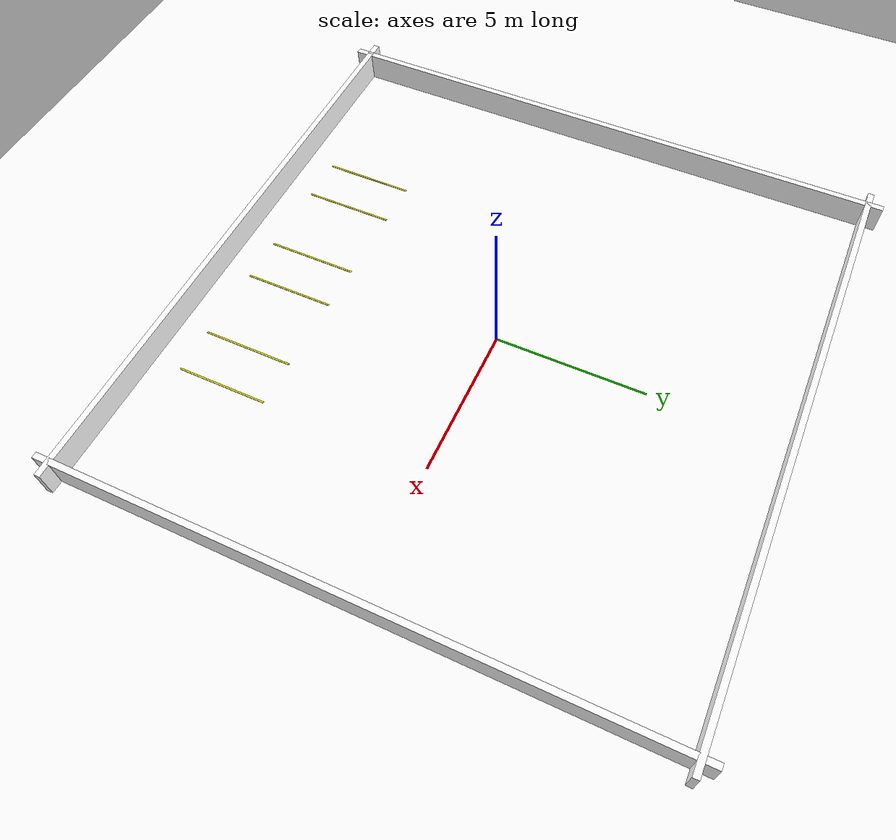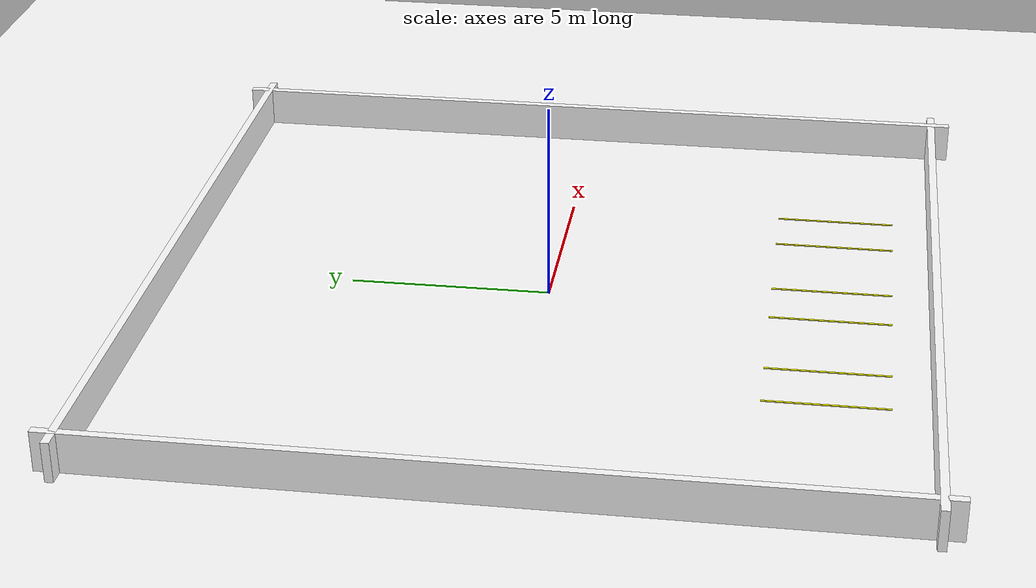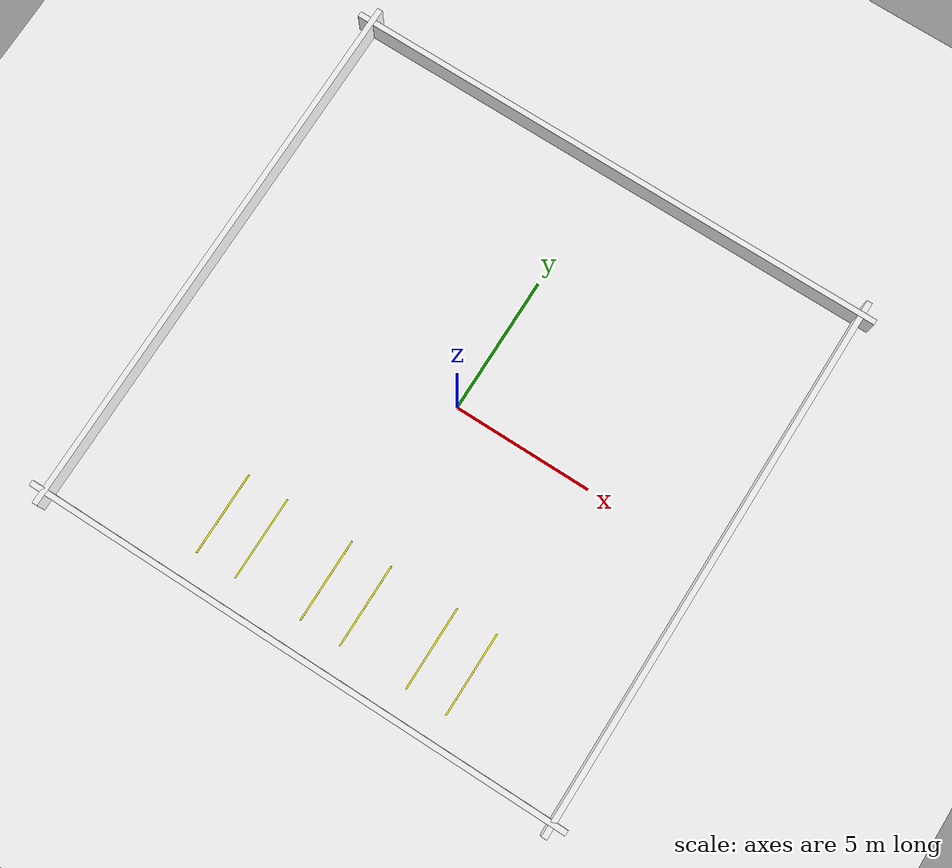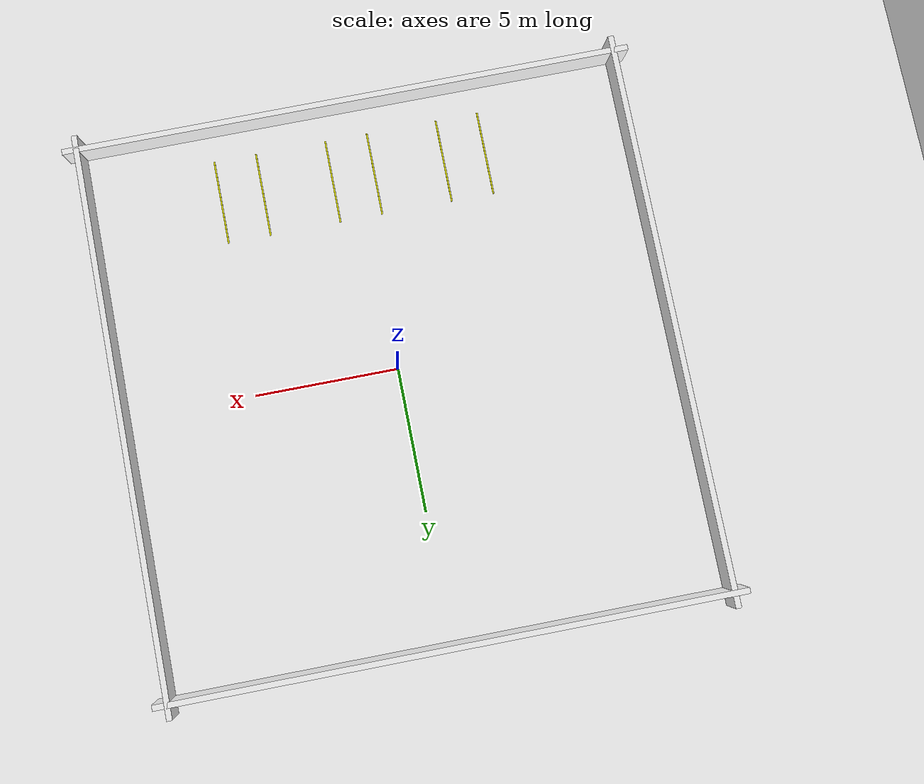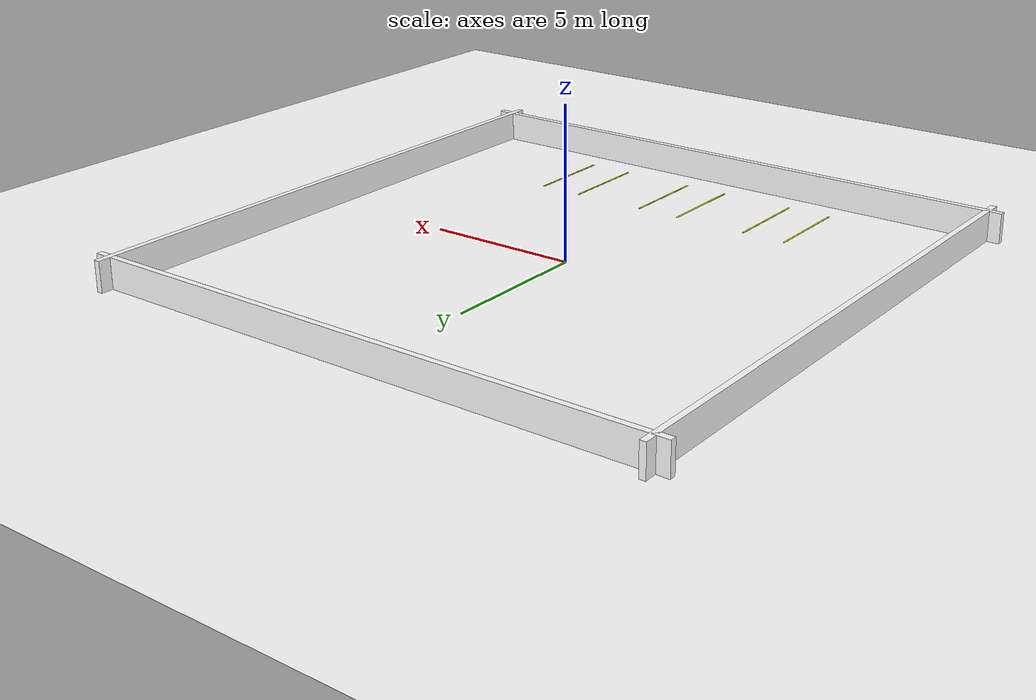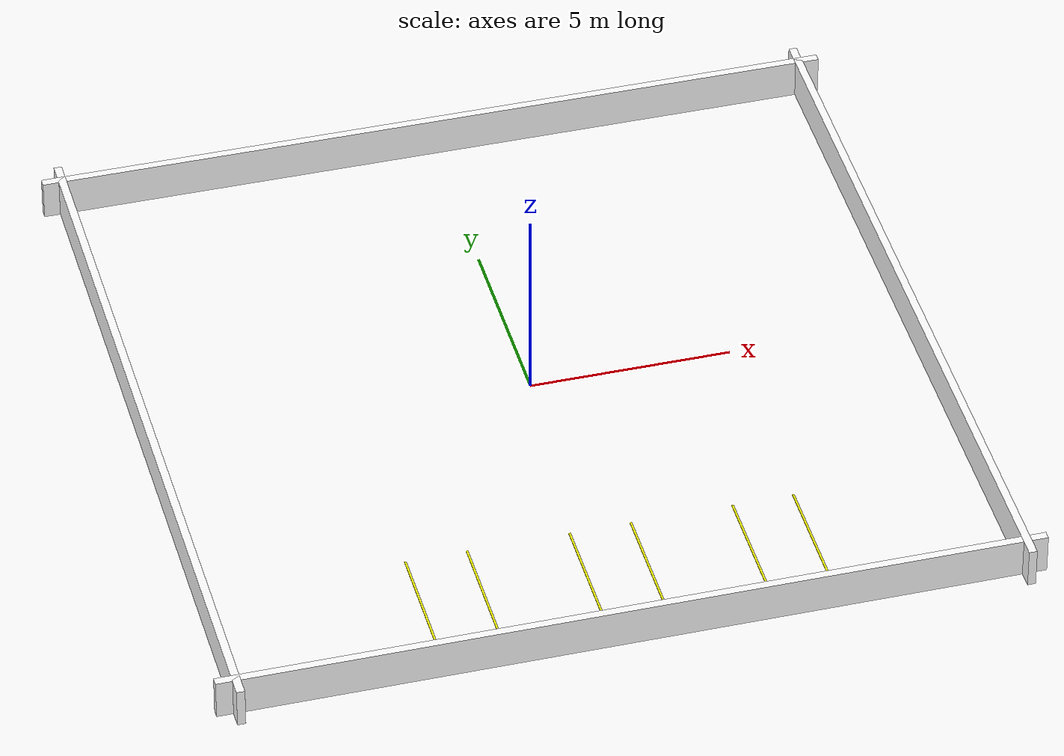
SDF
<?xml version="1.7"?>
<sdf version="1.10">
  <world name="parking_world_reverse">

    <light name="sun" type="directional">
      <pose>0 0 10 0 0 0</pose>
      <diffuse>1 1 1 1</diffuse>
      <specular>0.2 0.2 0.2 1</specular>
      <direction>-0.2 -0.3 -1</direction>
      <cast_shadows>false</cast_shadows>
    </light>

    <model name="ground">
      <static>true</static>
      <pose>0 0 0 0 0 0</pose>
      <link name="link">
        <collision name="collision">
          <geometry>
            <plane><normal>0 0 1</normal><size>20 20</size></plane>
          </geometry>
        </collision>
        <visual name="visual">
          <geometry>
            <plane><normal>0 0 1</normal><size>20 20</size></plane>
          </geometry>
          <material>
            <ambient>1 1 1 1</ambient>
            <diffuse>1 1 1 1</diffuse>
            <specular>0.1 0.1 0.1 1</specular>
          </material>
        </visual>
      </link>
    </model>

    <model name="wall_north">
      <static>true</static>
      <pose>0 9.5 0.5 0 0 0</pose>
      <link name="link">
        <collision name="collision">
          <geometry><box><size>20 0.2 1</size></box></geometry>
        </collision>
        <visual name="visual">
          <geometry><box><size>20 0.2 1</size></box></geometry>
          <material><ambient>1 1 1 1</ambient><diffuse>1 1 1 1</diffuse></material>
        </visual>
      </link>
    </model>

    <model name="wall_south">
      <static>true</static>
      <pose>0 -9.5 0.5 0 0 0</pose>
      <link name="link">
        <collision name="collision">
          <geometry><box><size>20 0.2 1</size></box></geometry>
        </collision>
        <visual name="visual">
          <geometry><box><size>20 0.2 1</size></box></geometry>
          <material><ambient>1 1 1 1</ambient><diffuse>1 1 1 1</diffuse></material>
        </visual>
      </link>
    </model>

    <model name="wall_west">
      <static>true</static>
      <pose>-9.5 0 0.5 0 0 0</pose>
      <link name="link">
        <collision name="collision">
          <geometry><box><size>0.2 20 1</size></box></geometry>
        </collision>
        <visual name="visual">
          <geometry><box><size>0.2 20 1</size></box></geometry>
          <material><ambient>1 1 1 1</ambient><diffuse>1 1 1 1</diffuse></material>
        </visual>
      </link>
    </model>

    <model name="wall_east">
      <static>true</static>
      <pose>9.5 0 0.5 0 0 0</pose>
      <link name="link">
        <collision name="collision">
          <geometry><box><size>0.2 20 1</size></box></geometry>
        </collision>
        <visual name="visual">
          <geometry><box><size>0.2 20 1</size></box></geometry>
          <material><ambient>1 1 1 1</ambient><diffuse>1 1 1 1</diffuse></material>
        </visual>
      </link>
    </model>

    <!-- 후진주차 슬롯 3개 (아래쪽, 남쪽 벽 앞, y ≈ -7) -->

    <!-- 슬롯 1 : x ~ -4 -->
    <model name="reverse_slot1_left">
      <static>true</static>
      <pose>-4.5 -7 0.01 0 0 0</pose>
      <link name="link">
        <collision name="collision">
          <geometry><box><size>0.05 3 0.02</size></box></geometry>
        </collision>
        <visual name="visual">
          <geometry><box><size>0.05 3 0.02</size></box></geometry>
          <material><ambient>1 1 0 1</ambient><diffuse>1 1 0 1</diffuse></material>
        </visual>
      </link>
    </model>

    <model name="reverse_slot1_right">
      <static>true</static>
      <pose>-3.0 -7 0.01 0 0 0</pose>
      <link name="link">
        <collision name="collision">
          <geometry><box><size>0.05 3 0.02</size></box></geometry>
        </collision>
        <visual name="visual">
          <geometry><box><size>0.05 3 0.02</size></box></geometry>
          <material><ambient>1 1 0 1</ambient><diffuse>1 1 0 1</diffuse></material>
        </visual>
      </link>
    </model>

    <!-- 슬롯 2 : x ~ 0 -->
    <model name="reverse_slot2_left">
      <static>true</static>
      <pose>-0.5 -7 0.01 0 0 0</pose>
      <link name="link">
        <collision name="collision">
          <geometry><box><size>0.05 3 0.02</size></box></geometry>
        </collision>
        <visual name="visual">
          <geometry><box><size>0.05 3 0.02</size></box></geometry>
          <material><ambient>1 1 0 1</ambient><diffuse>1 1 0 1</diffuse></material>
        </visual>
      </link>
    </model>

    <model name="reverse_slot2_right">
      <static>true</static>
      <pose>1.0 -7 0.01 0 0 0</pose>
      <link name="link">
        <collision name="collision">
          <geometry><box><size>0.05 3 0.02</size></box></geometry>
        </collision>
        <visual name="visual">
          <geometry><box><size>0.05 3 0.02</size></box></geometry>
          <material><ambient>1 1 0 1</ambient><diffuse>1 1 0 1</diffuse></material>
        </visual>
      </link>
    </model>

    <!-- 슬롯 3 : x ~ +4 -->
    <model name="reverse_slot3_left">
      <static>true</static>
      <pose>3.5 -7 0.01 0 0 0</pose>
      <link name="link">
        <collision name="collision">
          <geometry><box><size>0.05 3 0.02</size></box></geometry>
        </collision>
        <visual name="visual">
          <geometry><box><size>0.05 3 0.02</size></box></geometry>
          <material><ambient>1 1 0 1</ambient><diffuse>1 1 0 1</diffuse></material>
        </visual>
      </link>
    </model>

    <model name="reverse_slot3_right">
      <static>true</static>
      <pose>5.0 -7 0.01 0 0 0</pose>
      <link name="link">
        <collision name="collision">
          <geometry><box><size>0.05 3 0.02</size></box></geometry>
        </collision>
        <visual name="visual">
          <geometry><box><size>0.05 3 0.02</size></box></geometry>
          <material><ambient>1 1 0 1</ambient><diffuse>1 1 0 1</diffuse></material>
        </visual>
      </link>
    </model>

  </world>
</sdf>
